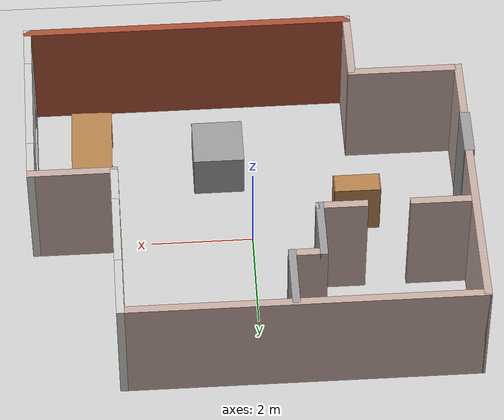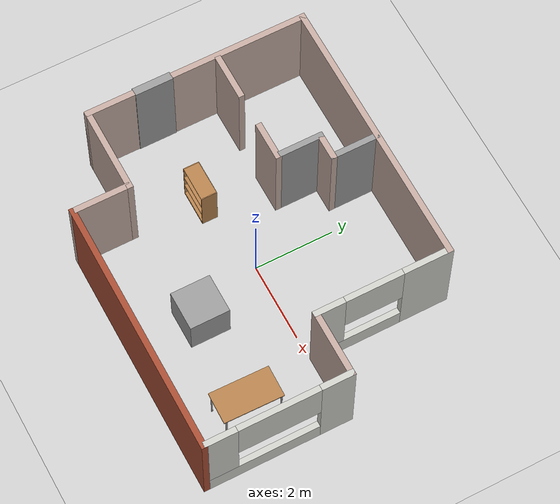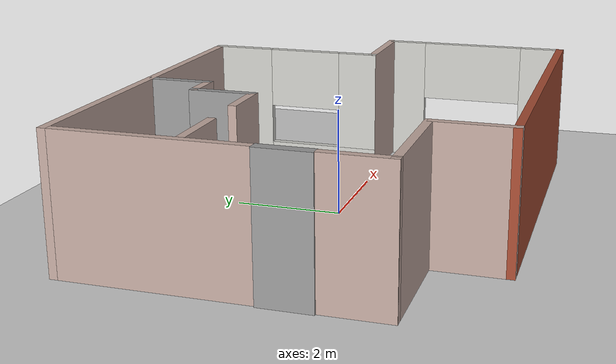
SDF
<sdf version="1.6">
 <world name="default">
  <plugin name="hello" filename="libhello.so"/>
  <light name="sun" type="directional">
   <pose>0 0 10 0 -0 0</pose>
   <diffuse>0.8 0.8 0.8 1</diffuse>
   <specular>0.2 0.2 0.2 1</specular>
   <attenuation>
    <range>1000</range>
    <constant>0.9</constant>
    <linear>0.01</linear>
    <quadratic>0.001</quadratic>
   </attenuation>
   <direction>-0.5 0.1 -0.9</direction>
  </light>
  <model name="ground_plane">
   <static>1</static>
   <link name="link">
    <collision name="collision">
     <geometry><plane><normal>0 0 1</normal><size>100 100</size></plane></geometry>
     <surface>
      <contact><collide_bitmask>65535</collide_bitmask></contact>
      <friction><ode><mu>100</mu><mu2>50</mu2></ode></friction>
     </surface>
    </collision>
    <visual name="visual">
     <cast_shadows>0</cast_shadows>
     <geometry><plane><normal>0 0 1</normal><size>100 100</size></plane></geometry>
     <material>
      <script><uri>file://media/materials/scripts/gazebo.material</uri><name>Gazebo/Grey</name></script>
     </material>
    </visual>
   </link>
  </model>
  <gravity>0 0 -9.8</gravity>
  <magnetic_field>6e-06 2.3e-05 -4.2e-05</magnetic_field>
  <atmosphere type="adiabatic"/>
  <physics name="default_physics" default="0" type="ode">
   <max_step_size>0.001</max_step_size>
   <real_time_factor>1</real_time_factor>
   <real_time_update_rate>1000</real_time_update_rate>
  </physics>
  <scene><ambient>0.4 0.4 0.4 1</ambient><background>0.7 0.7 0.7 1</background><shadows>1</shadows></scene>
  <spherical_coordinates>
   <surface_model>EARTH_WGS84</surface_model>
   <latitude_deg>0</latitude_deg>
   <longitude_deg>0</longitude_deg>
   <elevation>0</elevation>
   <heading_deg>0</heading_deg>
  </spherical_coordinates>
  <model name="table">
   <static>1</static>
   <link name="link">
    <collision name="surface">
     <pose>0 0 1 0 -0 0</pose>
     <geometry><box><size>1.5 0.8 0.03</size></box></geometry>
     <surface><friction><ode><mu>0.6</mu><mu2>0.6</mu2></ode></friction></surface>
    </collision>
    <visual name="visual1">
     <pose>0 0 1 0 -0 0</pose>
     <geometry><box><size>1.5 0.8 0.03</size></box></geometry>
     <material>
      <script><uri>file://media/materials/scripts/gazebo.material</uri><name>Gazebo/Wood</name></script>
     </material>
    </visual>
    <collision name="front_left_leg">
     <pose>0.68 0.38 0.5 0 -0 0</pose>
     <geometry><cylinder><radius>0.02</radius><length>1</length></cylinder></geometry>
    </collision>
    <visual name="front_left_leg">
     <pose>0.68 0.38 0.5 0 -0 0</pose>
     <geometry><cylinder><radius>0.02</radius><length>1</length></cylinder></geometry>
     <material>
      <script><uri>file://media/materials/scripts/gazebo.material</uri><name>Gazebo/Grey</name></script>
     </material>
    </visual>
    <collision name="front_right_leg">
     <pose>0.68 -0.38 0.5 0 -0 0</pose>
     <geometry><cylinder><radius>0.02</radius><length>1</length></cylinder></geometry>
    </collision>
    <visual name="front_right_leg">
     <pose>0.68 -0.38 0.5 0 -0 0</pose>
     <geometry><cylinder><radius>0.02</radius><length>1</length></cylinder></geometry>
     <material>
      <script><uri>file://media/materials/scripts/gazebo.material</uri><name>Gazebo/Grey</name></script>
     </material>
    </visual>
    <collision name="back_right_leg">
     <pose>-0.68 -0.38 0.5 0 -0 0</pose>
     <geometry><cylinder><radius>0.02</radius><length>1</length></cylinder></geometry>
    </collision>
    <visual name="back_right_leg">
     <pose>-0.68 -0.38 0.5 0 -0 0</pose>
     <geometry><cylinder><radius>0.02</radius><length>1</length></cylinder></geometry>
     <material>
      <script><uri>file://media/materials/scripts/gazebo.material</uri><name>Gazebo/Grey</name></script>
     </material>
    </visual>
    <collision name="back_left_leg">
     <pose>-0.68 0.38 0.5 0 -0 0</pose>
     <geometry><cylinder><radius>0.02</radius><length>1</length></cylinder></geometry>
    </collision>
    <visual name="back_left_leg">
     <pose>-0.68 0.38 0.5 0 -0 0</pose>
     <geometry><cylinder><radius>0.02</radius><length>1</length></cylinder></geometry>
     <material>
      <script><uri>file://media/materials/scripts/gazebo.material</uri><name>Gazebo/Grey</name></script>
     </material>
    </visual>
   </link>
   <pose>3.09588 -1.8701 0 0 0 -1.59061</pose>
  </model>
  <model name="Untitled">
   <pose>0.04831 -0.040102 0 0 -0 0</pose>
   <link name="Door_0">
    <collision name="Door_0_Collision">
     <geometry><box><size>0.962 0.2 2.5</size></box></geometry>
     <pose>0 0 1.25 0 -0 0</pose>
    </collision>
    <visual name="Door_0_Visual">
     <pose>0 0 1.25 0 -0 0</pose>
     <geometry><box><size>0.962 0.2 2.5</size></box></geometry>
     <material>
      <script><uri>file://media/materials/scripts/gazebo.material</uri><name>Gazebo/Grey</name></script>
     </material>
    </visual>
    <pose>-4.23411 -0.424608 0 0 0 -1.57106</pose>
   </link>
   <link name="Wall_11">
    <collision name="Wall_11_Collision">
     <geometry><box><size>3.5 0.15 2.5</size></box></geometry>
     <pose>0 0 1.25 0 -0 0</pose>
    </collision>
    <visual name="Wall_11_Visual">
     <pose>0 0 1.25 0 -0 0</pose>
     <geometry><box><size>3.5 0.15 2.5</size></box></geometry>
     <material>
      <script><uri>file://media/materials/scripts/gazebo.material</uri><name>Gazebo/Grey</name></script>
      <ambient>0.760784 0.662745 0.627451 1</ambient>
     </material>
     <meta><layer>0</layer></meta>
    </visual>
    <pose>-4.225 1.8 0 0 0 -1.5708</pose>
   </link>
   <link name="Wall_13">
    <collision name="Wall_13_Collision">
     <geometry><box><size>1.25 0.15 2.5</size></box></geometry>
     <pose>0 0 1.25 0 -0 0</pose>
    </collision>
    <visual name="Wall_13_Visual">
     <pose>0 0 1.25 0 -0 0</pose>
     <geometry><box><size>1.25 0.15 2.5</size></box></geometry>
     <material>
      <script><uri>file://media/materials/scripts/gazebo.material</uri><name>Gazebo/Grey</name></script>
      <ambient>0.760784 0.662745 0.627451 1</ambient>
     </material>
     <meta><layer>0</layer></meta>
    </visual>
    <pose>-4.225 -1.525 0 0 0 -1.5708</pose>
   </link>
   <link name="Wall_16">
    <collision name="Wall_16_Collision">
     <geometry><box><size>2.25 0.15 2.5</size></box></geometry>
     <pose>0 0 1.25 0 -0 0</pose>
    </collision>
    <visual name="Wall_16_Visual">
     <pose>0 0 1.25 0 -0 0</pose>
     <geometry><box><size>2.25 0.15 2.5</size></box></geometry>
     <material>
      <script><uri>file://media/materials/scripts/gazebo.material</uri><name>Gazebo/Grey</name></script>
      <ambient>0.760784 0.662745 0.627451 1</ambient>
     </material>
     <meta><layer>0</layer></meta>
    </visual>
    <pose>-3.175 -2.075 0 0 -0 0</pose>
   </link>
   <link name="Wall_18">
    <collision name="Wall_18_Collision">
     <geometry><box><size>1.25 0.15 2.5</size></box></geometry>
     <pose>0 0 1.25 0 -0 0</pose>
    </collision>
    <visual name="Wall_18_Visual">
     <pose>0 0 1.25 0 -0 0</pose>
     <geometry><box><size>1.25 0.15 2.5</size></box></geometry>
     <material>
      <script><uri>file://media/materials/scripts/gazebo.material</uri><name>Gazebo/Grey</name></script>
      <ambient>1 1 1 1</ambient>
     </material>
     <meta><layer>0</layer></meta>
    </visual>
    <pose>-0.649535 2.87722 0 0 0 -1.5708</pose>
   </link>
   <link name="Wall_19">
    <collision name="Wall_19_Collision">
     <geometry><box><size>0.75 0.15 2.5</size></box></geometry>
     <pose>0 0 1.25 0 -0 0</pose>
    </collision>
    <visual name="Wall_19_Visual">
     <pose>0 0 1.25 0 -0 0</pose>
     <geometry><box><size>0.75 0.15 2.5</size></box></geometry>
     <material>
      <script><uri>file://media/materials/scripts/gazebo.material</uri><name>Gazebo/Grey</name></script>
      <ambient>0.760784 0.662745 0.627451 1</ambient>
     </material>
     <meta><layer>0</layer></meta>
    </visual>
    <pose>-0.949535 2.32722 0 0 -0 3.14159</pose>
   </link>
   <link name="Wall_2">
    <collision name="Wall_2_Collision">
     <geometry><box><size>7 0.15 2.5</size></box></geometry>
     <pose>0 0 1.25 0 -0 0</pose>
    </collision>
    <visual name="Wall_2_Visual">
     <pose>0 0 1.25 0 -0 0</pose>
     <geometry><box><size>7 0.15 2.5</size></box></geometry>
     <material>
      <script><uri>file://media/materials/scripts/gazebo.material</uri><name>Gazebo/Grey</name></script>
      <ambient>0.760784 0.662745 0.627451 1</ambient>
     </material>
     <meta><layer>0</layer></meta>
    </visual>
    <pose>-0.8 3.475 0 0 -0 0</pose>
   </link>
   <link name="Wall_20">
    <collision name="Wall_20_Collision">
     <geometry><box><size>1.25 0.15 2.5</size></box></geometry>
     <pose>0 0 1.25 0 -0 0</pose>
    </collision>
    <visual name="Wall_20_Visual">
     <pose>0 0 1.25 0 -0 0</pose>
     <geometry><box><size>1.25 0.15 2.5</size></box></geometry>
     <material>
      <script><uri>file://media/materials/scripts/gazebo.material</uri><name>Gazebo/Grey</name></script>
      <ambient>1 1 1 1</ambient>
     </material>
     <meta><layer>0</layer></meta>
    </visual>
    <pose>-1.24954 1.77722 0 0 0 -1.5708</pose>
   </link>
   <link name="Wall_21">
    <collision name="Wall_21_Collision">
     <geometry><box><size>1 0.15 2.5</size></box></geometry>
     <pose>0 0 1.25 0 -0 0</pose>
    </collision>
    <visual name="Wall_21_Visual">
     <pose>0 0 1.25 0 -0 0</pose>
     <geometry><box><size>1 0.15 2.5</size></box></geometry>
     <material>
      <script><uri>file://media/materials/scripts/gazebo.material</uri><name>Gazebo/Grey</name></script>
      <ambient>0.760784 0.662745 0.627451 1</ambient>
     </material>
     <meta><layer>0</layer></meta>
    </visual>
    <pose>-1.67454 1.22722 0 0 -0 3.14159</pose>
   </link>
   <link name="Wall_23">
    <collision name="Wall_23_Collision">
     <geometry><box><size>1.25 0.15 2.5</size></box></geometry>
     <pose>0 0 1.25 0 -0 0</pose>
    </collision>
    <visual name="Wall_23_Visual">
     <pose>0 0 1.25 0 -0 0</pose>
     <geometry><box><size>1.25 0.15 2.5</size></box></geometry>
     <material>
      <script><uri>file://media/materials/scripts/gazebo.material</uri><name>Gazebo/Grey</name></script>
      <ambient>0.760784 0.662745 0.627451 1</ambient>
     </material>
     <meta><layer>0</layer></meta>
    </visual>
    <pose>-3.60654 1.22722 0 0 -0 3.14159</pose>
   </link>
   <link name="Wall_3">
    <pose>2.625 1.8 0 0 0 -1.5708</pose>
    <visual name="Wall_3_Visual_0">
     <pose>-1.12576 0 1.25 0 -0 0</pose>
     <geometry><box><size>1.24849 0.15 2.5</size></box></geometry>
     <material>
      <script><uri>file://media/materials/scripts/gazebo.material</uri><name>Gazebo/CeilingTiled</name></script>
      <ambient>1 1 1 1</ambient>
     </material>
     <meta><layer>0</layer></meta>
    </visual>
    <collision name="Wall_3_Collision_0">
     <geometry><box><size>1.24849 0.15 2.5</size></box></geometry>
     <pose>-1.12576 0 1.25 0 -0 0</pose>
    </collision>
    <visual name="Wall_3_Visual_1">
     <pose>0.624243 0 0.25 0 -0 0</pose>
     <geometry><box><size>2.25151 0.15 0.5</size></box></geometry>
     <material>
      <script><uri>file://media/materials/scripts/gazebo.material</uri><name>Gazebo/CeilingTiled</name></script>
      <ambient>1 1 1 1</ambient>
     </material>
     <meta><layer>0</layer></meta>
    </visual>
    <collision name="Wall_3_Collision_1">
     <geometry><box><size>2.25151 0.15 0.5</size></box></geometry>
     <pose>0.624243 0 0.25 0 -0 0</pose>
    </collision>
    <visual name="Wall_3_Visual_2">
     <pose>1.35844 0 1.5 0 -0 0</pose>
     <geometry><box><size>0.783117 0.15 2</size></box></geometry>
     <material>
      <script><uri>file://media/materials/scripts/gazebo.material</uri><name>Gazebo/CeilingTiled</name></script>
      <ambient>1 1 1 1</ambient>
     </material>
     <meta><layer>0</layer></meta>
    </visual>
    <collision name="Wall_3_Collision_2">
     <geometry><box><size>0.783117 0.15 2</size></box></geometry>
     <pose>1.35844 0 1.5 0 -0 0</pose>
    </collision>
    <visual name="Wall_3_Visual_3">
     <pose>0.232685 0 1.9 0 -0 0</pose>
     <geometry><box><size>1.4684 0.15 1.2</size></box></geometry>
     <material>
      <script><uri>file://media/materials/scripts/gazebo.material</uri><name>Gazebo/CeilingTiled</name></script>
      <ambient>1 1 1 1</ambient>
     </material>
     <meta><layer>0</layer></meta>
    </visual>
    <collision name="Wall_3_Collision_3">
     <geometry><box><size>1.4684 0.15 1.2</size></box></geometry>
     <pose>0.232685 0 1.9 0 -0 0</pose>
    </collision>
   </link>
   <link name="Wall_4">
    <collision name="Wall_4_Collision">
     <geometry><box><size>1.75 0.15 2.5</size></box></geometry>
     <pose>0 0 1.25 0 -0 0</pose>
    </collision>
    <visual name="Wall_4_Visual">
     <pose>0 0 1.25 0 -0 0</pose>
     <geometry><box><size>1.75 0.15 2.5</size></box></geometry>
     <material>
      <script><uri>file://media/materials/scripts/gazebo.material</uri><name>Gazebo/Grey</name></script>
      <ambient>0.760784 0.662745 0.627451 1</ambient>
     </material>
     <meta><layer>0</layer></meta>
    </visual>
    <pose>3.425 0.125 0 0 -0 0</pose>
   </link>
   <link name="Wall_5">
    <pose>4.225 -1.675 0 0 0 -1.5708</pose>
    <visual name="Wall_5_Visual_0">
     <pose>-1.45834 0 1.25 0 -0 0</pose>
     <geometry><box><size>0.833328 0.15 2.5</size></box></geometry>
     <material>
      <script><uri>file://media/materials/scripts/gazebo.material</uri><name>Gazebo/CeilingTiled</name></script>
      <ambient>0.760784 0.662745 0.627451 1</ambient>
     </material>
     <meta><layer>0</layer></meta>
    </visual>
    <collision name="Wall_5_Collision_0">
     <geometry><box><size>0.833328 0.15 2.5</size></box></geometry>
     <pose>-1.45834 0 1.25 0 -0 0</pose>
    </collision>
    <visual name="Wall_5_Visual_1">
     <pose>0.416664 0 0.25 0 -0 0</pose>
     <geometry><box><size>2.91667 0.15 0.5</size></box></geometry>
     <material>
      <script><uri>file://media/materials/scripts/gazebo.material</uri><name>Gazebo/CeilingTiled</name></script>
      <ambient>0.760784 0.662745 0.627451 1</ambient>
     </material>
     <meta><layer>0</layer></meta>
    </visual>
    <collision name="Wall_5_Collision_1">
     <geometry><box><size>2.91667 0.15 0.5</size></box></geometry>
     <pose>0.416664 0 0.25 0 -0 0</pose>
    </collision>
    <visual name="Wall_5_Visual_2">
     <pose>1.43612 0 1.5 0 -0 0</pose>
     <geometry><box><size>0.877768 0.15 2</size></box></geometry>
     <material>
      <script><uri>file://media/materials/scripts/gazebo.material</uri><name>Gazebo/CeilingTiled</name></script>
      <ambient>0.760784 0.662745 0.627451 1</ambient>
     </material>
     <meta><layer>0</layer></meta>
    </visual>
    <collision name="Wall_5_Collision_2">
     <geometry><box><size>0.877768 0.15 2</size></box></geometry>
     <pose>1.43612 0 1.5 0 -0 0</pose>
    </collision>
    <visual name="Wall_5_Visual_3">
     <pose>-0.02222 0 1.9 0 -0 0</pose>
     <geometry><box><size>2.0389 0.15 1.2</size></box></geometry>
     <material>
      <script><uri>file://media/materials/scripts/gazebo.material</uri><name>Gazebo/CeilingTiled</name></script>
      <ambient>0.760784 0.662745 0.627451 1</ambient>
     </material>
     <meta><layer>0</layer></meta>
    </visual>
    <collision name="Wall_5_Collision_3">
     <geometry><box><size>2.0389 0.15 1.2</size></box></geometry>
     <pose>-0.02222 0 1.9 0 -0 0</pose>
    </collision>
   </link>
   <link name="Wall_6">
    <collision name="Wall_6_Collision">
     <geometry><box><size>6.5 0.15 2.5</size></box></geometry>
     <pose>0 0 1.25 0 -0 0</pose>
    </collision>
    <visual name="Wall_6_Visual">
     <pose>0 0 1.25 0 -0 0</pose>
     <geometry><box><size>6.5 0.15 2.5</size></box></geometry>
     <material>
      <script><uri>file://media/materials/scripts/gazebo.material</uri><name>Gazebo/Bricks</name></script>
      <ambient>1 1 1 1</ambient>
     </material>
     <meta><layer>0</layer></meta>
    </visual>
    <pose>1.05 -3.475 0 0 -0 3.14159</pose>
   </link>
   <link name="Wall_7">
    <collision name="Wall_7_Collision">
     <geometry><box><size>1.5 0.15 2.5</size></box></geometry>
     <pose>0 0 1.25 0 -0 0</pose>
    </collision>
    <visual name="Wall_7_Visual">
     <pose>0 0 1.25 0 -0 0</pose>
     <geometry><box><size>1.5 0.15 2.5</size></box></geometry>
     <material>
      <script><uri>file://media/materials/scripts/gazebo.material</uri><name>Gazebo/Grey</name></script>
      <ambient>0.760784 0.662745 0.627451 1</ambient>
     </material>
     <meta><layer>0</layer></meta>
    </visual>
    <pose>-2.125 -2.8 0 0 -0 1.5708</pose>
   </link>
   <static>1</static>
  </model>
  <model name="bookshelf">
   <static>1</static>
   <link name="link">
    <inertial><mass>1</mass></inertial>
    <collision name="back">
     <pose>0 0.005 0.6 0 -0 0</pose>
     <geometry><box><size>0.9 0.01 1.2</size></box></geometry>
    </collision>
    <visual name="visual1">
     <pose>0 0.005 0.6 0 -0 0</pose>
     <geometry><box><size>0.9 0.01 1.2</size></box></geometry>
     <material>
      <script><uri>file://media/materials/scripts/gazebo.material</uri><name>Gazebo/Wood</name></script>
     </material>
    </visual>
    <collision name="left_side">
     <pose>0.45 -0.195 0.6 0 -0 0</pose>
     <geometry><box><size>0.02 0.4 1.2</size></box></geometry>
    </collision>
    <visual name="visual2">
     <pose>0.45 -0.195 0.6 0 -0 0</pose>
     <geometry><box><size>0.02 0.4 1.2</size></box></geometry>
     <material>
      <script><uri>file://media/materials/scripts/gazebo.material</uri><name>Gazebo/Wood</name></script>
     </material>
    </visual>
    <collision name="right_side">
     <pose>-0.45 -0.195 0.6 0 -0 0</pose>
     <geometry><box><size>0.02 0.4 1.2</size></box></geometry>
    </collision>
    <visual name="visual3">
     <pose>-0.45 -0.195 0.6 0 -0 0</pose>
     <geometry><box><size>0.02 0.4 1.2</size></box></geometry>
     <material>
      <script><uri>file://media/materials/scripts/gazebo.material</uri><name>Gazebo/Wood</name></script>
     </material>
    </visual>
    <collision name="bottom">
     <pose>0 -0.195 0.03 0 -0 0</pose>
     <geometry><box><size>0.88 0.4 0.06</size></box></geometry>
    </collision>
    <visual name="visual4">
     <pose>0 -0.195 0.03 0 -0 0</pose>
     <geometry><box><size>0.88 0.4 0.06</size></box></geometry>
     <material>
      <script><uri>file://media/materials/scripts/gazebo.material</uri><name>Gazebo/Wood</name></script>
     </material>
    </visual>
    <collision name="top">
     <pose>0 -0.195 1.19 0 -0 0</pose>
     <geometry><box><size>0.88 0.4 0.02</size></box></geometry>
    </collision>
    <visual name="visual5">
     <pose>0 -0.195 1.19 0 -0 0</pose>
     <geometry><box><size>0.88 0.4 0.02</size></box></geometry>
     <material>
      <script><uri>file://media/materials/scripts/gazebo.material</uri><name>Gazebo/Wood</name></script>
     </material>
    </visual>
    <collision name="low_shelf">
     <pose>0 -0.195 0.43 0 -0 0</pose>
     <geometry><box><size>0.88 0.4 0.02</size></box></geometry>
    </collision>
    <visual name="visual6">
     <pose>0 -0.195 0.43 0 -0 0</pose>
     <geometry><box><size>0.88 0.4 0.02</size></box></geometry>
     <material>
      <script><uri>file://media/materials/scripts/gazebo.material</uri><name>Gazebo/Wood</name></script>
     </material>
    </visual>
    <collision name="high_shelf">
     <pose>0 -0.195 0.8 0 -0 0</pose>
     <geometry><box><size>0.88 0.4 0.02</size></box></geometry>
    </collision>
    <visual name="visual7">
     <pose>0 -0.195 0.8 0 -0 0</pose>
     <geometry><box><size>0.88 0.4 0.02</size></box></geometry>
     <material>
      <script><uri>file://media/materials/scripts/gazebo.material</uri><name>Gazebo/Wood</name></script>
     </material>
    </visual>
   </link>
   <pose>-2.07208 -0.166672 0 0 -0 0</pose>
  </model>
  <model name="wood_block_10_2_1cm">
   <link name="link_0">
    <pose>0.553745 -0.720789 0.50031 -2.3e-05 6e-06 0</pose>
    <inertial>
     <mass>1</mass>
     <inertia>
      <ixx>0.166667</ixx>
      <ixy>0</ixy>
      <ixz>0</ixz>
      <iyy>0.166667</iyy>
      <iyz>0</iyz>
      <izz>0.166667</izz>
     </inertia>
    </inertial>
    <visual name="visual">
     <geometry><box><size>1 1 1</size></box></geometry>
     <material>
      <lighting>1</lighting>
      <script><uri>file://media/materials/scripts/gazebo.material</uri><name>Gazebo/Grey</name></script>
      <shader type="pixel"/>
      <ambient>0.3 0.3 0.3 1</ambient>
      <diffuse>0.7 0.7 0.7 1</diffuse>
      <specular>0.01 0.01 0.01 1</specular>
      <emissive>0 0 0 1</emissive>
     </material>
    </visual>
    <collision name="collision">
     <geometry><box><size>1 1 1</size></box></geometry>
     <surface>
      <friction>
       <ode><mu>1</mu><mu2>1</mu2><fdir1>0 0 0</fdir1><slip1>0</slip1><slip2>0</slip2></ode>
       <torsional>
        <coefficient>1</coefficient>
        <patch_radius>0</patch_radius>
        <surface_radius>0</surface_radius>
        <use_patch_radius>1</use_patch_radius>
        <ode><slip>0</slip></ode>
       </torsional>
      </friction>
      <bounce><restitution_coefficient>0</restitution_coefficient><threshold>1e+06</threshold></bounce>
      <contact>
       <collide_without_contact>0</collide_without_contact>
       <collide_without_contact_bitmask>1</collide_without_contact_bitmask>
       <collide_bitmask>1</collide_bitmask>
       <ode>
        <soft_cfm>0</soft_cfm>
        <soft_erp>0.2</soft_erp>
        <kp>1e+13</kp>
        <kd>1</kd>
        <max_vel>0.01</max_vel>
        <min_depth>0</min_depth>
       </ode>
       <bullet>
        <split_impulse>1</split_impulse>
        <split_impulse_penetration_threshold>-0.01</split_impulse_penetration_threshold>
        <soft_cfm>0</soft_cfm>
        <soft_erp>0.2</soft_erp>
        <kp>1e+13</kp>
        <kd>1</kd>
       </bullet>
      </contact>
     </surface>
    </collision>
   </link>
   <static>0</static>
   <pose>0.040195 -1.01565 -0.000297 2.3e-05 -6e-06 0</pose>
  </model>
 </world>
</sdf>
